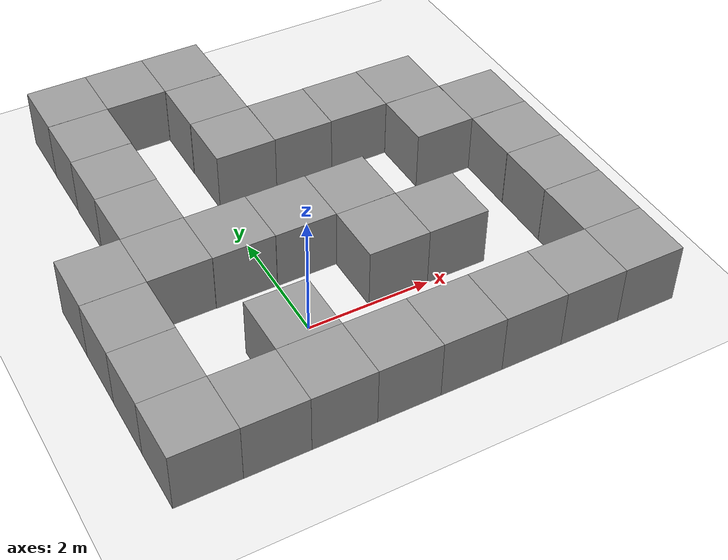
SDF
<sdf version="1.7">
 <world name="default">
  <light name="sun" type="directional">
   <pose>0 0 10 0 -0 0</pose>
   <diffuse>0.8 0.8 0.8 1</diffuse>
   <specular>0.2 0.2 0.2 1</specular>
   <attenuation>
    <range>1000</range>
    <constant>0.9</constant>
    <linear>0.01</linear>
    <quadratic>0.001</quadratic>
   </attenuation>
   <direction>-0.5 0.1 -0.9</direction>
   <spot><inner_angle>0</inner_angle><outer_angle>0</outer_angle><falloff>0</falloff></spot>
  </light>
  <model name="ground_plane">
   <static>1</static>
   <link name="link">
    <collision name="collision">
     <geometry><plane><normal>0 0 1</normal><size>100 100</size></plane></geometry>
     <surface>
      <contact><collide_bitmask>65535</collide_bitmask></contact>
      <friction><ode><mu>100</mu><mu2>50</mu2></ode></friction>
     </surface>
    </collision>
    <visual name="visual">
     <cast_shadows>0</cast_shadows>
     <geometry><plane><normal>0 0 1</normal><size>100 100</size></plane></geometry>
     <material>
      <script><uri>file://media/materials/scripts/gazebo.material</uri><name>Gazebo/White</name></script>
     </material>
    </visual>
   </link>
  </model>
  <gravity>0 0 -9.8</gravity>
  <magnetic_field>6e-06 2.3e-05 -4.2e-05</magnetic_field>
  <atmosphere type="adiabatic"/>
  <physics type="ode">
   <max_step_size>0.001</max_step_size>
   <real_time_factor>1</real_time_factor>
   <real_time_update_rate>1000</real_time_update_rate>
  </physics>
  <scene><ambient>0.4 0.4 0.4 1</ambient><background>0.7 0.7 0.7 1</background><shadows>1</shadows></scene>
  <spherical_coordinates>
   <surface_model>EARTH_WGS84</surface_model>
   <latitude_deg>0</latitude_deg>
   <longitude_deg>0</longitude_deg>
   <elevation>0</elevation>
   <heading_deg>0</heading_deg>
  </spherical_coordinates>
  <model name="unit_box">
   <pose>-0.5 -0.5 0.5 0 1e-05 9.8e-05</pose>
   <link name="link">
    <inertial>
     <mass>1</mass>
     <inertia>
      <ixx>0.166667</ixx>
      <ixy>0</ixy>
      <ixz>0</ixz>
      <iyy>0.166667</iyy>
      <iyz>0</iyz>
      <izz>0.166667</izz>
     </inertia>
    </inertial>
    <collision name="collision"><geometry><box><size>1 1 1</size></box></geometry></collision>
    <visual name="visual">
     <geometry><box><size>1 1 1</size></box></geometry>
     <material>
      <script><name>Gazebo/Grey</name><uri>file://media/materials/scripts/gazebo.material</uri></script>
     </material>
    </visual>
   </link>
   <static>1</static>
  </model>
  <model name="unit_box_0">
   <pose>-0.5 -1.5 0.5 1e-05 -0 0.00029</pose>
   <link name="link">
    <inertial>
     <mass>1</mass>
     <inertia>
      <ixx>0.166667</ixx>
      <ixy>0</ixy>
      <ixz>0</ixz>
      <iyy>0.166667</iyy>
      <iyz>0</iyz>
      <izz>0.166667</izz>
     </inertia>
    </inertial>
    <collision name="collision"><geometry><box><size>1 1 1</size></box></geometry></collision>
    <visual name="visual">
     <geometry><box><size>1 1 1</size></box></geometry>
     <material>
      <script><name>Gazebo/Grey</name><uri>file://media/materials/scripts/gazebo.material</uri></script>
     </material>
    </visual>
   </link>
   <static>1</static>
  </model>
  <model name="unit_box_1">
   <pose>0.5 -1.5 0.5 -1e-05 -0 0.000276</pose>
   <link name="link">
    <inertial>
     <mass>1</mass>
     <inertia>
      <ixx>0.166667</ixx>
      <ixy>0</ixy>
      <ixz>0</ixz>
      <iyy>0.166667</iyy>
      <iyz>0</iyz>
      <izz>0.166667</izz>
     </inertia>
    </inertial>
    <collision name="collision"><geometry><box><size>1 1 1</size></box></geometry></collision>
    <visual name="visual">
     <geometry><box><size>1 1 1</size></box></geometry>
     <material>
      <script><name>Gazebo/Grey</name><uri>file://media/materials/scripts/gazebo.material</uri></script>
     </material>
    </visual>
   </link>
   <static>1</static>
  </model>
  <model name="unit_box_2">
   <pose>1.5 -1.5 0.5 0 -0 0.000264</pose>
   <link name="link">
    <inertial>
     <mass>1</mass>
     <inertia>
      <ixx>0.166667</ixx>
      <ixy>0</ixy>
      <ixz>0</ixz>
      <iyy>0.166667</iyy>
      <iyz>0</iyz>
      <izz>0.166667</izz>
     </inertia>
    </inertial>
    <collision name="collision"><geometry><box><size>1 1 1</size></box></geometry></collision>
    <visual name="visual">
     <geometry><box><size>1 1 1</size></box></geometry>
     <material>
      <script><name>Gazebo/Grey</name><uri>file://media/materials/scripts/gazebo.material</uri></script>
     </material>
    </visual>
   </link>
   <static>1</static>
  </model>
  <model name="unit_box_3">
   <pose>2.5 -1.5 0.5 -1e-05 -0 0.000255</pose>
   <link name="link">
    <inertial>
     <mass>1</mass>
     <inertia>
      <ixx>0.166667</ixx>
      <ixy>0</ixy>
      <ixz>0</ixz>
      <iyy>0.166667</iyy>
      <iyz>0</iyz>
      <izz>0.166667</izz>
     </inertia>
    </inertial>
    <collision name="collision"><geometry><box><size>1 1 1</size></box></geometry></collision>
    <visual name="visual">
     <geometry><box><size>1 1 1</size></box></geometry>
     <material>
      <script><name>Gazebo/Grey</name><uri>file://media/materials/scripts/gazebo.material</uri></script>
     </material>
    </visual>
   </link>
   <static>1</static>
  </model>
  <model name="unit_box_4">
   <pose>-1.5 -1.5 0.5 0 -0 0.000324</pose>
   <link name="link">
    <inertial>
     <mass>1</mass>
     <inertia>
      <ixx>0.166667</ixx>
      <ixy>0</ixy>
      <ixz>0</ixz>
      <iyy>0.166667</iyy>
      <iyz>0</iyz>
      <izz>0.166667</izz>
     </inertia>
    </inertial>
    <collision name="collision"><geometry><box><size>1 1 1</size></box></geometry></collision>
    <visual name="visual">
     <geometry><box><size>1 1 1</size></box></geometry>
     <material>
      <script><name>Gazebo/Grey</name><uri>file://media/materials/scripts/gazebo.material</uri></script>
     </material>
    </visual>
   </link>
   <static>1</static>
  </model>
  <model name="unit_box_5">
   <pose>-2.5 -1.5 0.5 -1e-05 -0 0.001499</pose>
   <link name="link">
    <inertial>
     <mass>1</mass>
     <inertia>
      <ixx>0.166667</ixx>
      <ixy>0</ixy>
      <ixz>0</ixz>
      <iyy>0.166667</iyy>
      <iyz>0</iyz>
      <izz>0.166667</izz>
     </inertia>
    </inertial>
    <collision name="collision"><geometry><box><size>1 1 1</size></box></geometry></collision>
    <visual name="visual">
     <geometry><box><size>1 1 1</size></box></geometry>
     <material>
      <script><name>Gazebo/Grey</name><uri>file://media/materials/scripts/gazebo.material</uri></script>
     </material>
    </visual>
   </link>
   <static>1</static>
  </model>
  <model name="unit_box_6">
   <pose>-2.5 -0.5 0.5 0 1e-05 0.001681</pose>
   <link name="link">
    <inertial>
     <mass>1</mass>
     <inertia>
      <ixx>0.166667</ixx>
      <ixy>0</ixy>
      <ixz>0</ixz>
      <iyy>0.166667</iyy>
      <iyz>0</iyz>
      <izz>0.166667</izz>
     </inertia>
    </inertial>
    <collision name="collision"><geometry><box><size>1 1 1</size></box></geometry></collision>
    <visual name="visual">
     <geometry><box><size>1 1 1</size></box></geometry>
     <material>
      <script><name>Gazebo/Grey</name><uri>file://media/materials/scripts/gazebo.material</uri></script>
     </material>
    </visual>
   </link>
   <static>1</static>
  </model>
  <model name="unit_box_7">
   <pose>-2.5 0.5 0.5 0 -0 0.0021</pose>
   <link name="link">
    <inertial>
     <mass>1</mass>
     <inertia>
      <ixx>0.166667</ixx>
      <ixy>0</ixy>
      <ixz>0</ixz>
      <iyy>0.166667</iyy>
      <iyz>0</iyz>
      <izz>0.166667</izz>
     </inertia>
    </inertial>
    <collision name="collision"><geometry><box><size>1 1 1</size></box></geometry></collision>
    <visual name="visual">
     <geometry><box><size>1 1 1</size></box></geometry>
     <material>
      <script><name>Gazebo/Grey</name><uri>file://media/materials/scripts/gazebo.material</uri></script>
     </material>
    </visual>
   </link>
   <static>1</static>
  </model>
  <model name="unit_box_8">
   <pose>-2.5 1.5 0.5 0 1e-05 -0.000196</pose>
   <link name="link">
    <inertial>
     <mass>1</mass>
     <inertia>
      <ixx>0.166667</ixx>
      <ixy>0</ixy>
      <ixz>0</ixz>
      <iyy>0.166667</iyy>
      <iyz>0</iyz>
      <izz>0.166667</izz>
     </inertia>
    </inertial>
    <collision name="collision"><geometry><box><size>1 1 1</size></box></geometry></collision>
    <visual name="visual">
     <geometry><box><size>1 1 1</size></box></geometry>
     <material>
      <script><name>Gazebo/Grey</name><uri>file://media/materials/scripts/gazebo.material</uri></script>
     </material>
    </visual>
   </link>
   <static>1</static>
  </model>
  <model name="unit_box_9">
   <pose>-1.5 1.5 0.5 0 -0 0.005699</pose>
   <link name="link">
    <inertial>
     <mass>1</mass>
     <inertia>
      <ixx>0.166667</ixx>
      <ixy>0</ixy>
      <ixz>0</ixz>
      <iyy>0.166667</iyy>
      <iyz>0</iyz>
      <izz>0.166667</izz>
     </inertia>
    </inertial>
    <collision name="collision"><geometry><box><size>1 1 1</size></box></geometry></collision>
    <visual name="visual">
     <geometry><box><size>1 1 1</size></box></geometry>
     <material>
      <script><name>Gazebo/Grey</name><uri>file://media/materials/scripts/gazebo.material</uri></script>
     </material>
    </visual>
   </link>
   <static>1</static>
  </model>
  <model name="unit_box_10">
   <pose>-0.5 1.5 0.5 0 1e-06 0.006966</pose>
   <link name="link">
    <inertial>
     <mass>1</mass>
     <inertia>
      <ixx>0.166667</ixx>
      <ixy>0</ixy>
      <ixz>0</ixz>
      <iyy>0.166667</iyy>
      <iyz>0</iyz>
      <izz>0.166667</izz>
     </inertia>
    </inertial>
    <collision name="collision"><geometry><box><size>1 1 1</size></box></geometry></collision>
    <visual name="visual">
     <geometry><box><size>1 1 1</size></box></geometry>
     <material>
      <script><name>Gazebo/Grey</name><uri>file://media/materials/scripts/gazebo.material</uri></script>
     </material>
    </visual>
   </link>
   <static>1</static>
  </model>
  <model name="unit_box_11">
   <pose>0.5 1.5 0.5 0 -0 0.006954</pose>
   <link name="link">
    <inertial>
     <mass>1</mass>
     <inertia>
      <ixx>0.166667</ixx>
      <ixy>0</ixy>
      <ixz>0</ixz>
      <iyy>0.166667</iyy>
      <iyz>0</iyz>
      <izz>0.166667</izz>
     </inertia>
    </inertial>
    <collision name="collision"><geometry><box><size>1 1 1</size></box></geometry></collision>
    <visual name="visual">
     <geometry><box><size>1 1 1</size></box></geometry>
     <material>
      <script><name>Gazebo/Grey</name><uri>file://media/materials/scripts/gazebo.material</uri></script>
     </material>
    </visual>
   </link>
   <static>1</static>
  </model>
  <model name="unit_box_12">
   <pose>1.5 1.5 0.5 0 -0 0.005662</pose>
   <link name="link">
    <inertial>
     <mass>1</mass>
     <inertia>
      <ixx>0.166667</ixx>
      <ixy>0</ixy>
      <ixz>0</ixz>
      <iyy>0.166667</iyy>
      <iyz>0</iyz>
      <izz>0.166667</izz>
     </inertia>
    </inertial>
    <collision name="collision"><geometry><box><size>1 1 1</size></box></geometry></collision>
    <visual name="visual">
     <geometry><box><size>1 1 1</size></box></geometry>
     <material>
      <script><name>Gazebo/Grey</name><uri>file://media/materials/scripts/gazebo.material</uri></script>
     </material>
    </visual>
   </link>
   <static>1</static>
  </model>
  <model name="unit_box_13">
   <pose>1.5 0.5 0.5 0 -0 0.000167</pose>
   <link name="link">
    <inertial>
     <mass>1</mass>
     <inertia>
      <ixx>0.166667</ixx>
      <ixy>0</ixy>
      <ixz>0</ixz>
      <iyy>0.166667</iyy>
      <iyz>0</iyz>
      <izz>0.166667</izz>
     </inertia>
    </inertial>
    <collision name="collision"><geometry><box><size>1 1 1</size></box></geometry></collision>
    <visual name="visual">
     <geometry><box><size>1 1 1</size></box></geometry>
     <material>
      <script><name>Gazebo/Grey</name><uri>file://media/materials/scripts/gazebo.material</uri></script>
     </material>
    </visual>
   </link>
   <static>1</static>
  </model>
  <model name="unit_box_14">
   <pose>2.5 0.5 0.5 1e-05 -0 0.000164</pose>
   <link name="link">
    <inertial>
     <mass>1</mass>
     <inertia>
      <ixx>0.166667</ixx>
      <ixy>0</ixy>
      <ixz>0</ixz>
      <iyy>0.166667</iyy>
      <iyz>0</iyz>
      <izz>0.166667</izz>
     </inertia>
    </inertial>
    <collision name="collision"><geometry><box><size>1 1 1</size></box></geometry></collision>
    <visual name="visual">
     <geometry><box><size>1 1 1</size></box></geometry>
     <material>
      <script><name>Gazebo/Grey</name><uri>file://media/materials/scripts/gazebo.material</uri></script>
     </material>
    </visual>
   </link>
   <static>1</static>
  </model>
  <model name="unit_box_15">
   <pose>3.5 -1.5 0.5 1e-05 -0 0.000257</pose>
   <link name="link">
    <inertial>
     <mass>1</mass>
     <inertia>
      <ixx>0.166667</ixx>
      <ixy>0</ixy>
      <ixz>0</ixz>
      <iyy>0.166667</iyy>
      <iyz>0</iyz>
      <izz>0.166667</izz>
     </inertia>
    </inertial>
    <collision name="collision"><geometry><box><size>1 1 1</size></box></geometry></collision>
    <visual name="visual">
     <geometry><box><size>1 1 1</size></box></geometry>
     <material>
      <script><name>Gazebo/Grey</name><uri>file://media/materials/scripts/gazebo.material</uri></script>
     </material>
    </visual>
   </link>
   <static>1</static>
  </model>
  <model name="unit_box_16">
   <pose>4.5 -1.5 0.5 0 0 -0.001209</pose>
   <link name="link">
    <inertial>
     <mass>1</mass>
     <inertia>
      <ixx>0.166667</ixx>
      <ixy>0</ixy>
      <ixz>0</ixz>
      <iyy>0.166667</iyy>
      <iyz>0</iyz>
      <izz>0.166667</izz>
     </inertia>
    </inertial>
    <collision name="collision"><geometry><box><size>1 1 1</size></box></geometry></collision>
    <visual name="visual">
     <geometry><box><size>1 1 1</size></box></geometry>
     <material>
      <script><name>Gazebo/Grey</name><uri>file://media/materials/scripts/gazebo.material</uri></script>
     </material>
    </visual>
   </link>
   <static>1</static>
  </model>
  <model name="unit_box_17">
   <pose>4.5 -0.5 0.5 0 -0 -0.001405</pose>
   <link name="link">
    <inertial>
     <mass>1</mass>
     <inertia>
      <ixx>0.166667</ixx>
      <ixy>0</ixy>
      <ixz>0</ixz>
      <iyy>0.166667</iyy>
      <iyz>0</iyz>
      <izz>0.166667</izz>
     </inertia>
    </inertial>
    <collision name="collision"><geometry><box><size>1 1 1</size></box></geometry></collision>
    <visual name="visual">
     <geometry><box><size>1 1 1</size></box></geometry>
     <material>
      <script><name>Gazebo/Grey</name><uri>file://media/materials/scripts/gazebo.material</uri></script>
     </material>
    </visual>
   </link>
   <static>1</static>
  </model>
  <model name="unit_box_18">
   <pose>4.5 0.5 0.5 0 -1e-05 -0.002486</pose>
   <link name="link">
    <inertial>
     <mass>1</mass>
     <inertia>
      <ixx>0.166667</ixx>
      <ixy>0</ixy>
      <ixz>0</ixz>
      <iyy>0.166667</iyy>
      <iyz>0</iyz>
      <izz>0.166667</izz>
     </inertia>
    </inertial>
    <collision name="collision"><geometry><box><size>1 1 1</size></box></geometry></collision>
    <visual name="visual">
     <geometry><box><size>1 1 1</size></box></geometry>
     <material>
      <script><name>Gazebo/Grey</name><uri>file://media/materials/scripts/gazebo.material</uri></script>
     </material>
    </visual>
   </link>
   <static>1</static>
  </model>
  <model name="unit_box_19">
   <pose>4.5 1.5 0.5 0 1e-05 -0.004198</pose>
   <link name="link">
    <inertial>
     <mass>1</mass>
     <inertia>
      <ixx>0.166667</ixx>
      <ixy>0</ixy>
      <ixz>0</ixz>
      <iyy>0.166667</iyy>
      <iyz>0</iyz>
      <izz>0.166667</izz>
     </inertia>
    </inertial>
    <collision name="collision"><geometry><box><size>1 1 1</size></box></geometry></collision>
    <visual name="visual">
     <geometry><box><size>1 1 1</size></box></geometry>
     <material>
      <script><name>Gazebo/Grey</name><uri>file://media/materials/scripts/gazebo.material</uri></script>
     </material>
    </visual>
   </link>
   <static>1</static>
  </model>
  <model name="unit_box_20">
   <pose>4.5 2.5 0.5 1e-05 0 -0.008507</pose>
   <link name="link">
    <inertial>
     <mass>1</mass>
     <inertia>
      <ixx>0.166667</ixx>
      <ixy>0</ixy>
      <ixz>0</ixz>
      <iyy>0.166667</iyy>
      <iyz>0</iyz>
      <izz>0.166667</izz>
     </inertia>
    </inertial>
    <collision name="collision"><geometry><box><size>1 1 1</size></box></geometry></collision>
    <visual name="visual">
     <geometry><box><size>1 1 1</size></box></geometry>
     <material>
      <script><name>Gazebo/Grey</name><uri>file://media/materials/scripts/gazebo.material</uri></script>
     </material>
    </visual>
   </link>
   <static>1</static>
  </model>
  <model name="unit_box_21">
   <pose>3.5 2.5 0.5 0 -1e-05 0.004219</pose>
   <link name="link">
    <inertial>
     <mass>1</mass>
     <inertia>
      <ixx>0.166667</ixx>
      <ixy>0</ixy>
      <ixz>0</ixz>
      <iyy>0.166667</iyy>
      <iyz>0</iyz>
      <izz>0.166667</izz>
     </inertia>
    </inertial>
    <collision name="collision"><geometry><box><size>1 1 1</size></box></geometry></collision>
    <visual name="visual">
     <geometry><box><size>1 1 1</size></box></geometry>
     <material>
      <script><name>Gazebo/Grey</name><uri>file://media/materials/scripts/gazebo.material</uri></script>
     </material>
    </visual>
   </link>
   <static>1</static>
  </model>
  <model name="unit_box_22">
   <pose>3.5 3.5 0.5 0 1e-05 -0.006831</pose>
   <link name="link">
    <inertial>
     <mass>1</mass>
     <inertia>
      <ixx>0.166667</ixx>
      <ixy>0</ixy>
      <ixz>0</ixz>
      <iyy>0.166667</iyy>
      <iyz>0</iyz>
      <izz>0.166667</izz>
     </inertia>
    </inertial>
    <collision name="collision"><geometry><box><size>1 1 1</size></box></geometry></collision>
    <visual name="visual">
     <geometry><box><size>1 1 1</size></box></geometry>
     <material>
      <script><name>Gazebo/Grey</name><uri>file://media/materials/scripts/gazebo.material</uri></script>
     </material>
    </visual>
   </link>
   <static>1</static>
  </model>
  <model name="unit_box_23">
   <pose>2.5 3.5 0.5 0 1e-05 -0.006912</pose>
   <link name="link">
    <inertial>
     <mass>1</mass>
     <inertia>
      <ixx>0.166667</ixx>
      <ixy>0</ixy>
      <ixz>0</ixz>
      <iyy>0.166667</iyy>
      <iyz>0</iyz>
      <izz>0.166667</izz>
     </inertia>
    </inertial>
    <collision name="collision"><geometry><box><size>1 1 1</size></box></geometry></collision>
    <visual name="visual">
     <geometry><box><size>1 1 1</size></box></geometry>
     <material>
      <script><name>Gazebo/Grey</name><uri>file://media/materials/scripts/gazebo.material</uri></script>
     </material>
    </visual>
   </link>
   <static>1</static>
  </model>
  <model name="unit_box_24">
   <pose>1.5 3.5 0.5 0 1e-05 -0.00969</pose>
   <link name="link">
    <inertial>
     <mass>1</mass>
     <inertia>
      <ixx>0.166667</ixx>
      <ixy>0</ixy>
      <ixz>0</ixz>
      <iyy>0.166667</iyy>
      <iyz>0</iyz>
      <izz>0.166667</izz>
     </inertia>
    </inertial>
    <collision name="collision"><geometry><box><size>1 1 1</size></box></geometry></collision>
    <visual name="visual">
     <geometry><box><size>1 1 1</size></box></geometry>
     <material>
      <script><name>Gazebo/Grey</name><uri>file://media/materials/scripts/gazebo.material</uri></script>
     </material>
    </visual>
   </link>
   <static>1</static>
  </model>
  <model name="unit_box_25">
   <pose>0.5 3.5 0.5 -1e-05 -0 -0.003634</pose>
   <link name="link">
    <inertial>
     <mass>1</mass>
     <inertia>
      <ixx>0.166667</ixx>
      <ixy>0</ixy>
      <ixz>0</ixz>
      <iyy>0.166667</iyy>
      <iyz>0</iyz>
      <izz>0.166667</izz>
     </inertia>
    </inertial>
    <collision name="collision"><geometry><box><size>1 1 1</size></box></geometry></collision>
    <visual name="visual">
     <geometry><box><size>1 1 1</size></box></geometry>
     <material>
      <script><name>Gazebo/Grey</name><uri>file://media/materials/scripts/gazebo.material</uri></script>
     </material>
    </visual>
   </link>
   <static>1</static>
  </model>
  <model name="unit_box_26">
   <pose>-1.5 2.5 0.5 0 -0 0.006119</pose>
   <link name="link">
    <inertial>
     <mass>1</mass>
     <inertia>
      <ixx>0.166667</ixx>
      <ixy>0</ixy>
      <ixz>0</ixz>
      <iyy>0.166667</iyy>
      <iyz>0</iyz>
      <izz>0.166667</izz>
     </inertia>
    </inertial>
    <collision name="collision"><geometry><box><size>1 1 1</size></box></geometry></collision>
    <visual name="visual">
     <geometry><box><size>1 1 1</size></box></geometry>
     <material>
      <script><name>Gazebo/Grey</name><uri>file://media/materials/scripts/gazebo.material</uri></script>
     </material>
    </visual>
   </link>
   <static>1</static>
  </model>
  <model name="unit_box_27">
   <pose>-1.5 3.5 0.5 -0 -1e-05 0.00612</pose>
   <link name="link">
    <inertial>
     <mass>1</mass>
     <inertia>
      <ixx>0.166667</ixx>
      <ixy>0</ixy>
      <ixz>0</ixz>
      <iyy>0.166667</iyy>
      <iyz>0</iyz>
      <izz>0.166667</izz>
     </inertia>
    </inertial>
    <collision name="collision"><geometry><box><size>1 1 1</size></box></geometry></collision>
    <visual name="visual">
     <geometry><box><size>1 1 1</size></box></geometry>
     <material>
      <script><name>Gazebo/Grey</name><uri>file://media/materials/scripts/gazebo.material</uri></script>
     </material>
    </visual>
   </link>
   <static>1</static>
  </model>
  <model name="unit_box_28">
   <pose>0.5 4.5 0.5 -0 -1e-05 -0.003948</pose>
   <link name="link">
    <inertial>
     <mass>1</mass>
     <inertia>
      <ixx>0.166667</ixx>
      <ixy>0</ixy>
      <ixz>0</ixz>
      <iyy>0.166667</iyy>
      <iyz>0</iyz>
      <izz>0.166667</izz>
     </inertia>
    </inertial>
    <collision name="collision"><geometry><box><size>1 1 1</size></box></geometry></collision>
    <visual name="visual">
     <geometry><box><size>1 1 1</size></box></geometry>
     <material>
      <script><name>Gazebo/Grey</name><uri>file://media/materials/scripts/gazebo.material</uri></script>
     </material>
    </visual>
   </link>
   <static>1</static>
  </model>
  <model name="unit_box_29">
   <pose>-1.5 4.5 0.5 0 -0 0.006519</pose>
   <link name="link">
    <inertial>
     <mass>1</mass>
     <inertia>
      <ixx>0.166667</ixx>
      <ixy>0</ixy>
      <ixz>0</ixz>
      <iyy>0.166667</iyy>
      <iyz>0</iyz>
      <izz>0.166667</izz>
     </inertia>
    </inertial>
    <collision name="collision"><geometry><box><size>1 1 1</size></box></geometry></collision>
    <visual name="visual">
     <geometry><box><size>1 1 1</size></box></geometry>
     <material>
      <script><name>Gazebo/Grey</name><uri>file://media/materials/scripts/gazebo.material</uri></script>
     </material>
    </visual>
   </link>
   <static>1</static>
  </model>
  <model name="unit_box_30">
   <pose>0.5 5.5 0.5 0 -0 0.00154</pose>
   <link name="link">
    <inertial>
     <mass>1</mass>
     <inertia>
      <ixx>0.166667</ixx>
      <ixy>0</ixy>
      <ixz>0</ixz>
      <iyy>0.166667</iyy>
      <iyz>0</iyz>
      <izz>0.166667</izz>
     </inertia>
    </inertial>
    <collision name="collision"><geometry><box><size>1 1 1</size></box></geometry></collision>
    <visual name="visual">
     <geometry><box><size>1 1 1</size></box></geometry>
     <material>
      <script><name>Gazebo/Grey</name><uri>file://media/materials/scripts/gazebo.material</uri></script>
     </material>
    </visual>
   </link>
   <static>1</static>
  </model>
  <model name="unit_box_31">
   <pose>-1.5 5.5 0.5 -0 1e-05 0.00066</pose>
   <link name="link">
    <inertial>
     <mass>1</mass>
     <inertia>
      <ixx>0.166667</ixx>
      <ixy>0</ixy>
      <ixz>0</ixz>
      <iyy>0.166667</iyy>
      <iyz>0</iyz>
      <izz>0.166667</izz>
     </inertia>
    </inertial>
    <collision name="collision"><geometry><box><size>1 1 1</size></box></geometry></collision>
    <visual name="visual">
     <geometry><box><size>1 1 1</size></box></geometry>
     <material>
      <script><name>Gazebo/Grey</name><uri>file://media/materials/scripts/gazebo.material</uri></script>
     </material>
    </visual>
   </link>
   <static>1</static>
  </model>
  <model name="unit_box_32">
   <pose>-0.5 5.5 0.5 -1e-05 -0 0.00153</pose>
   <link name="link">
    <inertial>
     <mass>1</mass>
     <inertia>
      <ixx>0.166667</ixx>
      <ixy>0</ixy>
      <ixz>0</ixz>
      <iyy>0.166667</iyy>
      <iyz>0</iyz>
      <izz>0.166667</izz>
     </inertia>
    </inertial>
    <collision name="collision"><geometry><box><size>1 1 1</size></box></geometry></collision>
    <visual name="visual">
     <geometry><box><size>1 1 1</size></box></geometry>
     <material>
      <script><name>Gazebo/Grey</name><uri>file://media/materials/scripts/gazebo.material</uri></script>
     </material>
    </visual>
   </link>
   <static>1</static>
  </model>
 </world>
</sdf>
